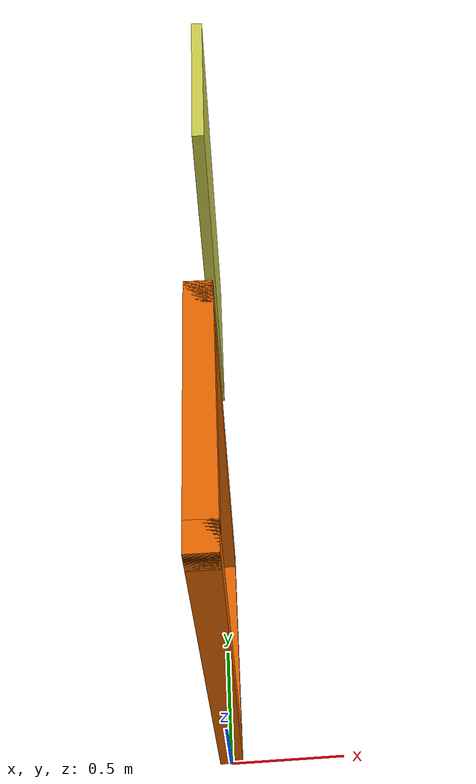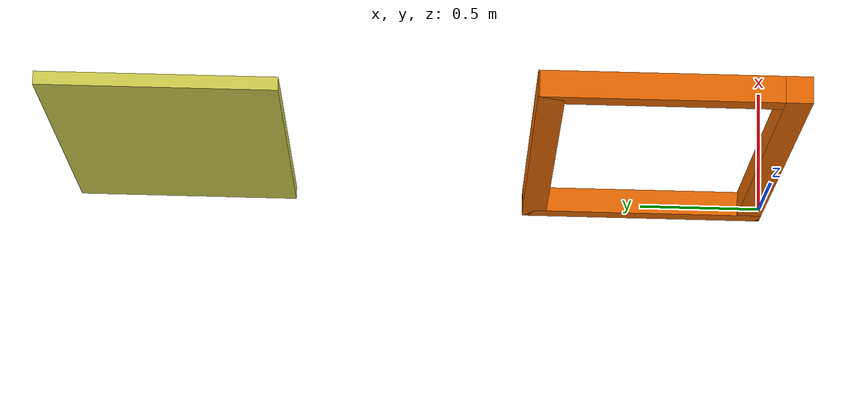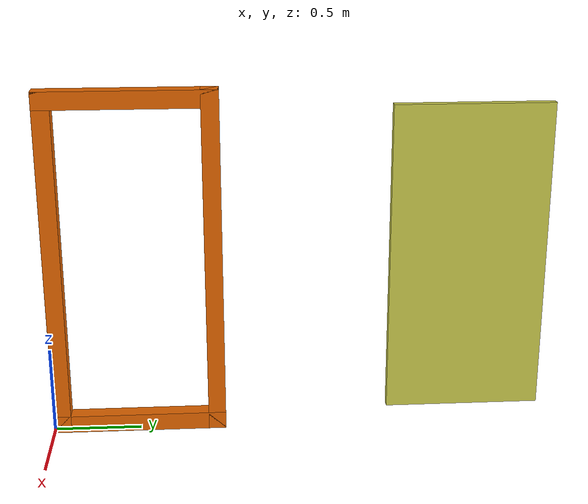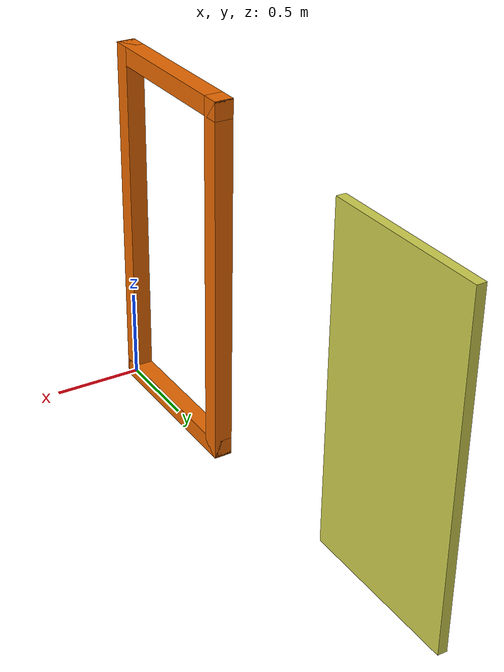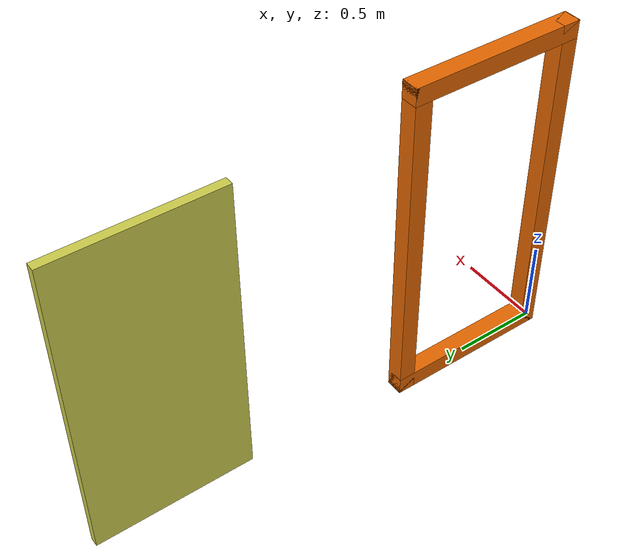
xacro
<?xml version="1.0" ?>
<robot xmlns:xacro="http://www.ros.org/wiki/xacro" name="door">

 <link name="world"/>
  <joint name="fixed" type="fixed">
    <parent link="world"/>
    <child link="baseLink"/>
    <origin rpy= "0 0 1.571" xyz="0 0 0"/>
  </joint>

  <link name="baseLink">
    <inertial>
      <origin rpy="0 0 0" xyz="0 0 0.35"/>
       <mass value="1.0"/>
       <inertia ixx="0.1" ixy="0" ixz="0" iyy="0.1" iyz="0" izz="0.1"/>
    </inertial>
    <visual>1
      <origin rpy="0 0 0" xyz="0.05 0 1.0"/>
      <geometry>
      <box size="0.1 0.1 2"/>
      </geometry>
	   <material name="framemat0">
      <color
                    rgba="0.9 0.4 0. 1" />
      </material>
    </visual>
    <visual>2
      <origin rpy="0 0 0" xyz="0.95 0 1"/>
      <geometry>
        <box size="0.1 0.1 2"/>
      </geometry>
	  <material name="framemat0"/>
    </visual>
    <visual>3
      <origin rpy="0 0 0" xyz="0.5 0 1.95"/>
      <geometry>
        <box size="1 0.1 0.1"/>
      </geometry>
	  <material name="framemat0"/>
	  </visual>
    <visual>4
      <origin rpy="0 0 0" xyz="0.5 0 0.05"/>
      <geometry>
        <box size="1 0.1 0.1"/>
      </geometry>
	  <material name="framemat0"/>
	  </visual>
    <collision>1
      <origin rpy="0 0 0" xyz="0.05 0 1"/>
      <geometry>
        <box size="0.1 0.1 2"/>
      </geometry>
    </collision>
    <collision>2
      <origin rpy="0 0 0" xyz="0.95 0 1.0"/>
      <geometry>
        <box size="0.1 0.1 2"/>
      </geometry>
    </collision>
    <collision>3
      <origin rpy="0 0 0" xyz="0.5 0 1.95"/>
      <geometry>
        <box size="1 0.1 0.1"/>
      </geometry>
    </collision>
    <collision>4
      <origin rpy="0 0 0" xyz="0.5 0 0.05"/>
      <geometry>
        <box size="1 0.1 0.1"/>
      </geometry>
    </collision>

  </link>

   <link name="door">
    <inertial>
      <origin rpy="0 0 0" xyz="0.4 0 0.4"/>
      <mass value="1.0"/>
      <inertia ixx="0.048966669" ixy="0" ixz="0" iyy="0.046466667" iyz="0" izz="0.0041666669"/>
    </inertial>
    <visual>
      <origin rpy="0 0 0" xyz="0.4 0 0.9"/>
      <geometry>
        <box size="0.9  0.05 1.8"/>
      </geometry>
	   <material name="doormat0">
      <color rgba="0.8 0.8 0.3 1" />
      </material>

	  </visual>
     <collision>
       <origin rpy="0 0 0" xyz="0.4 0 0.9"/>
       <geometry>
         <box size="0.9  0.05 1.8"/>
       </geometry>
     </collision>

   </link>
   <joint name="joint_baseLink_door" type="continuous">
    <parent link="baseLink"/>
    <child link="door"/>
	<dynamics damping="1.0" friction="0.0001"/>
    <origin xyz="2 0 0.1"/>
		<axis xyz="0 0 1"/>

  </joint>
</robot>
